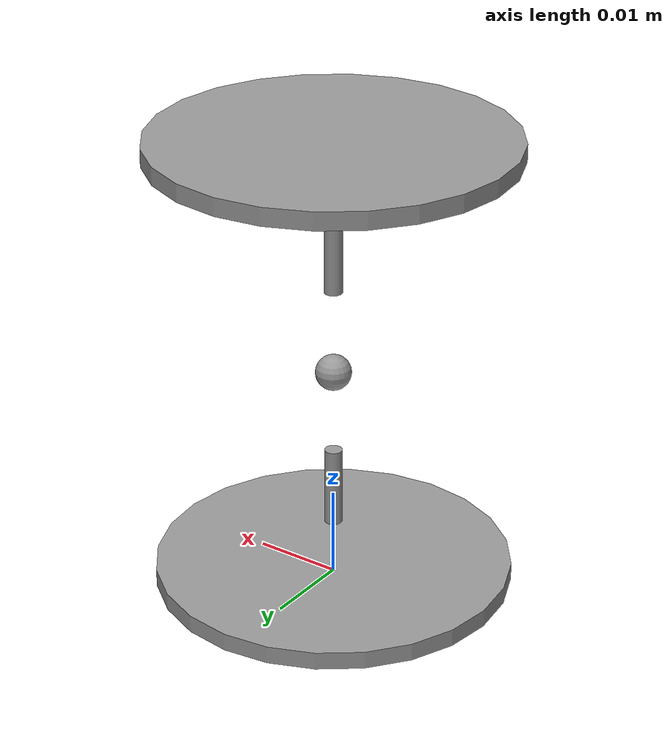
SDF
<?xml version="1.0" ?>
<sdf version="1.5">
  <model name="spring_buckle_test_2">
    <link name="plate_bottom">
      <gravity>0</gravity>
      <velocity_decay>
        <linear>0.01</linear>
        <angular>0.01</angular>
      </velocity_decay>
      <inertial>
        <mass>0.1</mass>
        <inertia>
          <ixx>0.0001</ixx>
          <ixy>0.0000</ixy>
          <ixz>0.0000</ixz>
          <iyy>0.0001</iyy>
          <iyz>0.0000</iyz>
          <izz>0.0001</izz>
        </inertia>
      </inertial>
      <visual name="stick_bottom_vis">
        <pose>0 0 0.011 0 0 0</pose>
        <geometry>
          <cylinder>
            <radius>0.001</radius>
            <length>0.009</length>
          </cylinder>
        </geometry>
        <material>
          <script>
            <uri>file://media/materials/scripts/gazebo.material</uri>
            <name>Gazebo/Grey</name>
          </script>
        </material>
      </visual>
      <visual name="plate_bottom_vis">
        <pose>0 0 0.001 0 0 0</pose>
        <geometry>
          <cylinder>
            <radius>0.02</radius>
            <length>0.002</length>
          </cylinder>
        </geometry>
        <material>
          <script>
            <uri>file://media/materials/scripts/gazebo.material</uri>
            <name>Gazebo/Grey</name>
          </script>
        </material>
      </visual>
      <collision name="plate_bottom_col">
        <pose>0 0 0.001 0 0 0</pose>
        <geometry>
          <cylinder>
            <radius>0.02</radius>
            <length>0.002</length>
          </cylinder>
        </geometry>
      </collision>
    </link>
    <link name="ball_1">
      <gravity>0</gravity>
      <velocity_decay>
        <linear>0.01</linear>
        <angular>0.01</angular>
      </velocity_decay>
      <pose>0 0 0.025 0 0 0</pose>
      <inertial>
        <mass>0.1</mass>
        <inertia>
          <ixx>0.0001</ixx>
          <ixy>0.0000</ixy>
          <ixz>0.0000</ixz>
          <iyy>0.0001</iyy>
          <iyz>0.0000</iyz>
          <izz>0.0001</izz>
        </inertia>
      </inertial>
      <visual name="ball_1_vis">
        <pose>0 0 0 0 0 0</pose>
        <geometry>
          <sphere>
            <radius>0.002</radius>
          </sphere>
        </geometry>
        <material>
          <script>
            <uri>file://media/materials/scripts/gazebo.material</uri>
            <name>Gazebo/Grey</name>
          </script>
        </material>
      </visual>
      <collision name="ball_1_col">
        <pose>0 0 0 0 0 0</pose>
        <geometry>
          <sphere>
            <radius>0.002</radius>
          </sphere>
        </geometry>
      </collision>
    </link>
    <link name="ball_2">
      <gravity>0</gravity>
      <velocity_decay>
        <linear>0.01</linear>
        <angular>0.01</angular>
      </velocity_decay>
      <pose>0 0 0.025 0 0 0</pose>
      <inertial>
        <mass>0.1</mass>
        <inertia>
          <ixx>0.0001</ixx>
          <ixy>0.0000</ixy>
          <ixz>0.0000</ixz>
          <iyy>0.0001</iyy>
          <iyz>0.0000</iyz>
          <izz>0.0001</izz>
        </inertia>
      </inertial>
      <visual name="ball_2_vis">
        <pose>0 0 0 0 0 0</pose>
        <geometry>
          <sphere>
            <radius>0.002</radius>
          </sphere>
        </geometry>
        <material>
          <script>
            <uri>file://media/materials/scripts/gazebo.material</uri>
            <name>Gazebo/Grey</name>
          </script>
        </material>
      </visual>
      <collision name="ball_2_col">
        <pose>0 0 0 0 0 0</pose>
        <geometry>
          <sphere>
            <radius>0.002</radius>
          </sphere>
        </geometry>
      </collision>
    </link>
    <link name="ball_3">
      <gravity>0</gravity>
      <velocity_decay>
        <linear>0.01</linear>
        <angular>0.01</angular>
      </velocity_decay>
      <pose>0 0 0.025 0 0 0</pose>
      <inertial>
        <mass>0.1</mass>
        <inertia>
          <ixx>0.0001</ixx>
          <ixy>0.0000</ixy>
          <ixz>0.0000</ixz>
          <iyy>0.0001</iyy>
          <iyz>0.0000</iyz>
          <izz>0.0001</izz>
        </inertia>
      </inertial>
      <visual name="ball_3_vis">
        <pose>0 0 0 0 0 0</pose>
        <geometry>
          <sphere>
            <radius>0.002</radius>
          </sphere>
        </geometry>
        <material>
          <script>
            <uri>file://media/materials/scripts/gazebo.material</uri>
            <name>Gazebo/Grey</name>
          </script>
        </material>
      </visual>
      <collision name="ball_3_col">
        <pose>0 0 0 0 0 0</pose>
        <geometry>
          <sphere>
            <radius>0.002</radius>
          </sphere>
        </geometry>
      </collision>
    </link>
    <link name="plate_top">
      <gravity>0</gravity>
      <velocity_decay>
        <linear>0.01</linear>
        <angular>0.01</angular>
      </velocity_decay>
      <pose>0 0 0.05 0 0 0</pose>
      <inertial>
        <mass>0.1</mass>
        <inertia>
          <ixx>0.0001</ixx>
          <ixy>0.0000</ixy>
          <ixz>0.0000</ixz>
          <iyy>0.0001</iyy>
          <iyz>0.0000</iyz>
          <izz>0.0001</izz>
        </inertia>
      </inertial>
      <visual name="stick_top_vis">
        <pose>0 0 -0.011 0 0 0</pose>
        <geometry>
          <cylinder>
            <radius>0.001</radius>
            <length>0.009</length>
          </cylinder>
        </geometry>
        <material>
          <script>
            <uri>file://media/materials/scripts/gazebo.material</uri>
            <name>Gazebo/Grey</name>
          </script>
        </material>
      </visual>
      <visual name="plate_top_vis">
        <pose>0 0 0.001 0 0 0</pose>
        <geometry>
          <cylinder>
            <radius>0.02</radius>
            <length>0.002</length>
          </cylinder>
        </geometry>
        <material>
          <script>
            <uri>file://media/materials/scripts/gazebo.material</uri>
            <name>Gazebo/Grey</name>
          </script>
        </material>
      </visual>
      <collision name="plate_top_col">
        <pose>0 0 0.001 0 0 0</pose>
        <geometry>
          <cylinder>
            <radius>0.02</radius>
            <length>0.002</length>
          </cylinder>
        </geometry>
      </collision>
    </link>
    <joint name="joint_bottom_1" type="prismatic">
      <parent>plate_bottom</parent>
      <child>ball_1</child>
      <axis>
        <xyz>0 0 1</xyz>
        <use_parent_model_frame>true</use_parent_model_frame>
        <dynamics>
          <spring_reference>0</spring_reference>
          <spring_stiffness>10000.0</spring_stiffness>
          <damping>0.5</damping>
          <friction>0</friction>
        </dynamics>
      </axis>
      <physics>
        <ode>
          <implicit_spring_damper>1</implicit_spring_damper>
        </ode>
      </physics>
    </joint>
    <joint name="joint_1_2" type="revolute">
      <parent>ball_1</parent>
      <child>ball_2</child>
      <axis>
        <xyz>1 0 0</xyz>
        <use_parent_model_frame>true</use_parent_model_frame>
        <dynamics>
          <spring_reference>0</spring_reference>
          <spring_stiffness>0.1</spring_stiffness>
          <damping>0.001</damping>
          <friction>0</friction>
        </dynamics>
        <limit>
          <lower>-1.0</lower>
          <upper>1.0</upper>
        </limit>
      </axis>
      <physics>
        <ode>
          <implicit_spring_damper>1</implicit_spring_damper>
        </ode>
      </physics>
    </joint>
    <joint name="joint_2_3" type="revolute">
      <parent>ball_2</parent>
      <child>ball_3</child>
      <axis>
        <xyz>0 1 0</xyz>
        <use_parent_model_frame>true</use_parent_model_frame>
        <dynamics>
          <spring_reference>0</spring_reference>
          <spring_stiffness>0.1</spring_stiffness>
          <damping>0.001</damping>
          <friction>0</friction>
        </dynamics>
        <limit>
          <lower>-1.0</lower>
          <upper>1.0</upper>
        </limit>
      </axis>
      <physics>
        <ode>
          <implicit_spring_damper>1</implicit_spring_damper>
        </ode>
      </physics>
    </joint>
    <joint name="joint_top_3" type="prismatic">
      <parent>plate_top</parent>
      <child>ball_3</child>
      <axis>
        <xyz>0 0 1</xyz>
        <use_parent_model_frame>true</use_parent_model_frame>
        <dynamics>
          <spring_reference>0</spring_reference>
          <spring_stiffness>10000.0</spring_stiffness>
          <damping>0.5</damping>
          <friction>0</friction>
        </dynamics>
      </axis>
      <physics>
        <ode>
          <implicit_spring_damper>1</implicit_spring_damper>
        </ode>
      </physics>
    </joint>
  </model>
</sdf>
